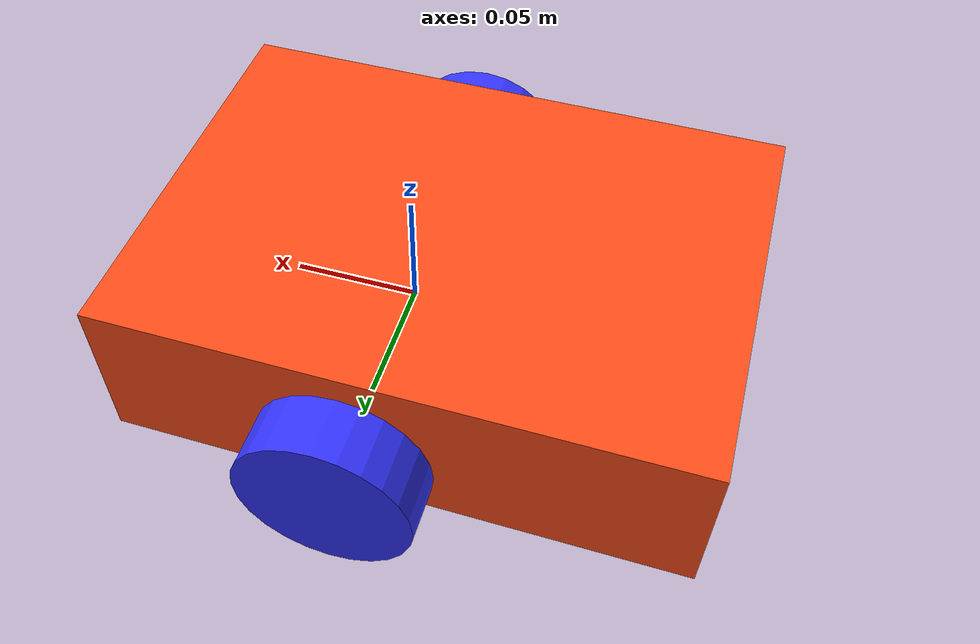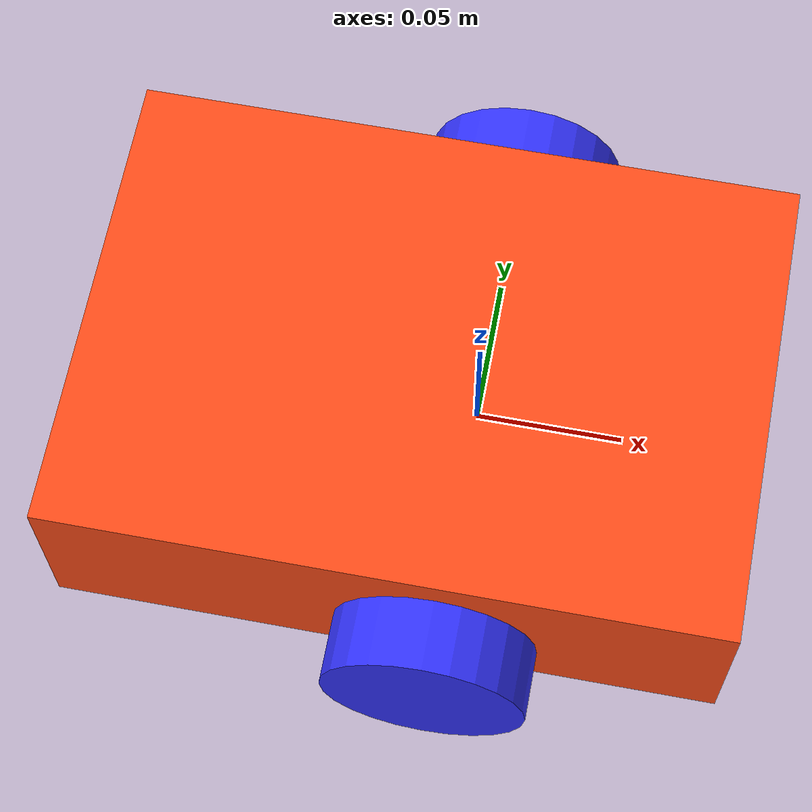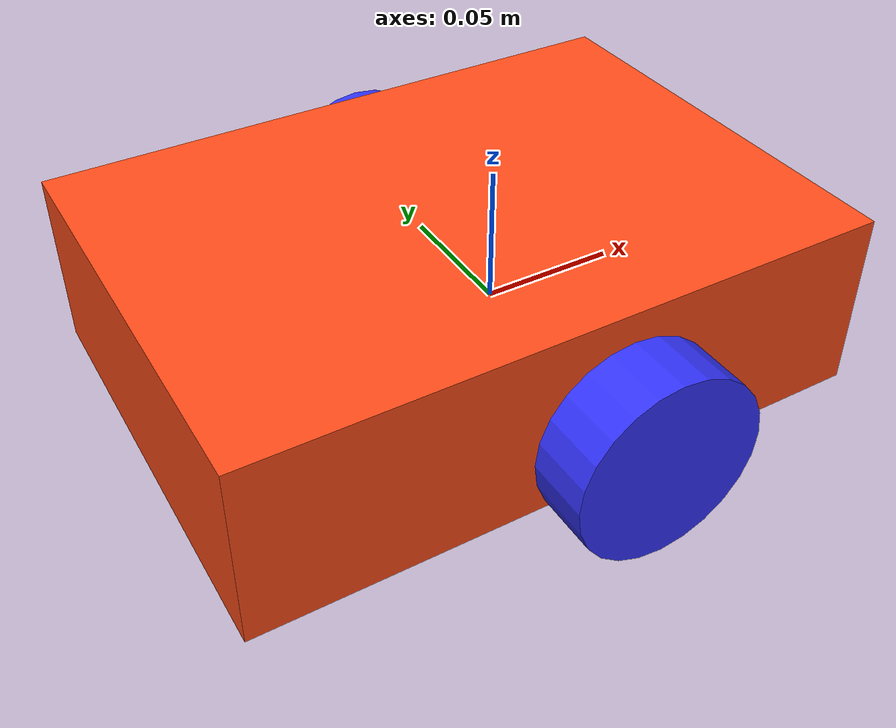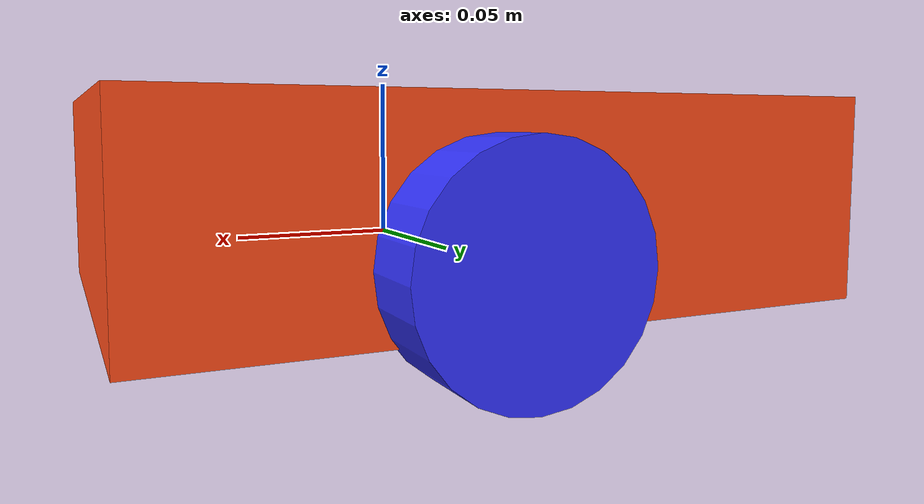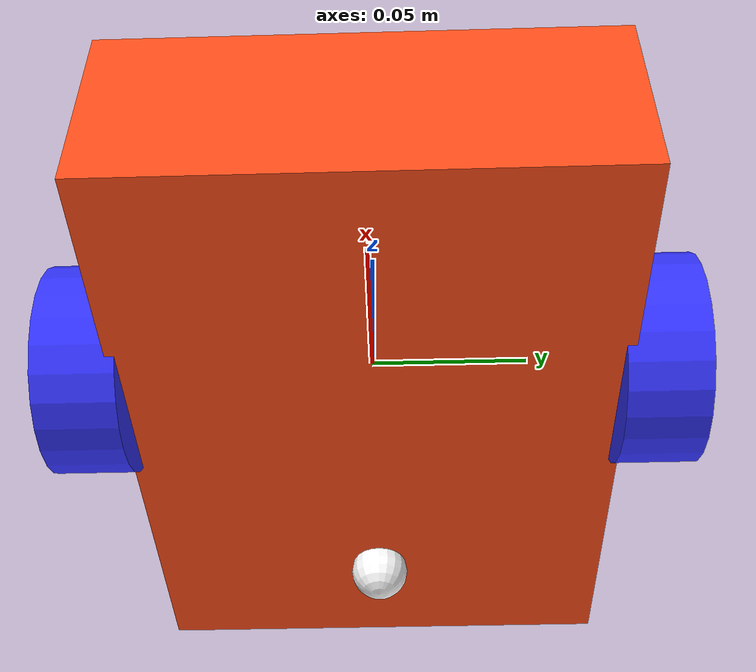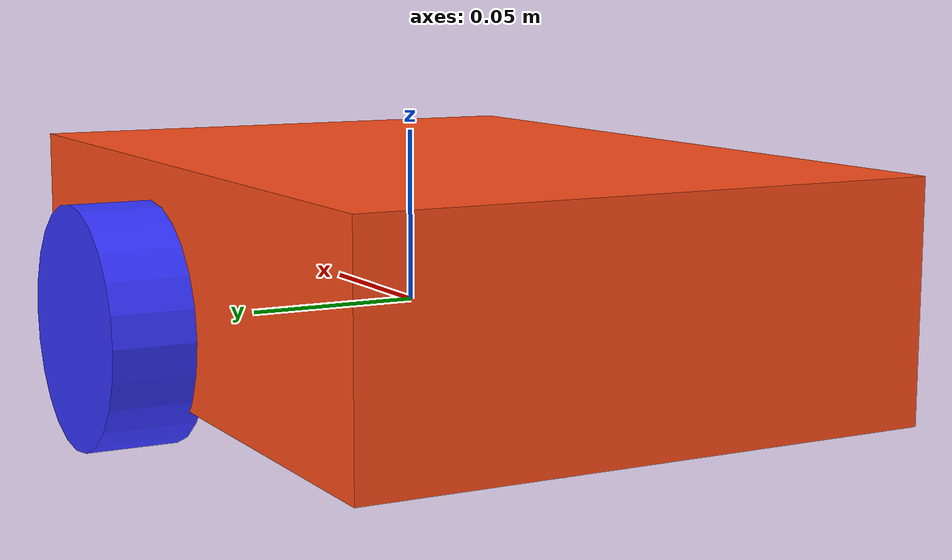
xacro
<?xml version="1.0"?>
<robot xmlns:xacro="http://www.ros.org/wiki/xacro" >

    <xacro:include filename="inertial_macros.xacro"/>

    <!-- Define camera tilt angle -->
    <xacro:property name="camera_link_tilt" value="0.0"/>

    <xacro:property name="chassis_length" value="0.225"/>
    <xacro:property name="chassis_width" value="0.160"/>
    <xacro:property name="chassis_height" value="0.065"/>
    <xacro:property name="chassis_mass" value="1.0"/>
    <xacro:property name="wheel_radius" value="0.034"/>
    <xacro:property name="wheel_thickness" value="0.026"/>
    <xacro:property name="wheel_mass" value="0.05"/>
    <xacro:property name="wheel_offset_x" value="0.130"/>
    <xacro:property name="wheel_offset_y" value="0.090"/>
    <xacro:property name="wheel_offset_z" value="0.02"/>
    <xacro:property name="caster_wheel_radius" value="0.01"/>
    <xacro:property name="caster_wheel_mass" value="0.01"/>
    <xacro:property name="caster_wheel_offset_x" value="0.045"/>
    <xacro:property name="caster_wheel_offset_z" value="${wheel_offset_z - wheel_radius + caster_wheel_radius}"/>

    <!-- Define camera tilt limits -->
    <xacro:property name="max_camera_tilt" value="1.57"/> <!-- Maximum tilt angle in radians -->
    <xacro:property name="min_camera_tilt" value="-1.57"/> <!-- Minimum tilt angle in radians -->

    <material name="white">
        <color rgba="1 1 1 1" />
    </material>

    <material name="orange">
        <color rgba="1 0.3 0.1 1"/>
    </material>

    <material name="blue">
        <color rgba="0.2 0.2 1 1"/>
    </material>

    <material name="black">
        <color rgba="0 0 0 1"/>
    </material>

    <material name="red">
        <color rgba="1 0 0 1"/>
    </material>

    <!-- BASE LINK -->

    <link name="base_link">

    </link>

    <!-- BASE_FOOTPRINT LINK -->

    <joint name="base_footprint_joint" type="fixed">
        <parent link="base_link"/>
        <child link="base_footprint"/>
        <origin xyz="0 0 0" rpy="0 0 0"/>
    </joint>

    <link name="base_footprint">
    </link>

    <!-- CHASSIS LINK -->

    <joint name="chassis_joint" type="fixed">
        <parent link="base_link"/>
        <child link="chassis"/>
        <origin xyz="${-wheel_offset_x} 0 ${-wheel_offset_z}"/>
    </joint>

    <link name="chassis">
        <visual>
            <origin xyz="${chassis_length/2} 0 ${chassis_height/2}"/>
            <geometry>
                <box size="${chassis_length} ${chassis_width} ${chassis_height}"/>
            </geometry>
            <material name="orange"/>
        </visual>
        <collision>
            <origin xyz="${chassis_length/2} 0 ${chassis_height/2}"/>
            <geometry>
                <box size="${chassis_length} ${chassis_width} ${chassis_height}"/>
            </geometry>
        </collision>
        <xacro:inertial_box mass="0.5" x="${chassis_length}" y="${chassis_width}" z="${chassis_height}">
            <origin xyz="${chassis_length/2} 0 ${chassis_height/2}" rpy="0 0 0"/>
        </xacro:inertial_box>
    </link>

    <!-- LEFT WHEEL LINK -->

    <joint name="left_wheel_joint" type="continuous">
        <parent link="base_link"/>
        <child link="left_wheel"/>
        <origin xyz="0 ${wheel_offset_y} 0" rpy="-${pi/2} 0 0" />
        <axis xyz="0 0 1"/>
    </joint>

    <link name="left_wheel">
        <visual>
            <geometry>
                <cylinder radius="${wheel_radius}" length="${wheel_thickness}"/>
            </geometry>
            <material name="blue"/>
        </visual>
        <collision>
            <geometry>
                <sphere radius="${wheel_radius}"/>
            </geometry>
        </collision>
        <xacro:inertial_cylinder mass="${wheel_mass}" length="${wheel_thickness}" radius="${wheel_radius}">
            <origin xyz="0 0 0" rpy="0 0 0"/>
        </xacro:inertial_cylinder>
    </link>

    <gazebo reference="left_wheel">
        <material>Gazebo/Blue</material>
    </gazebo>

    <!-- RIGHT WHEEL LINK -->

    <joint name="right_wheel_joint" type="continuous">
        <parent link="base_link"/>
        <child link="right_wheel"/>
        <origin xyz="0 ${-wheel_offset_y} 0" rpy="${pi/2} 0 0" />
        <axis xyz="0 0 -1"/>
    </joint>

    <link name="right_wheel">
        <visual>
            <geometry>
                <cylinder radius="${wheel_radius}" length="${wheel_thickness}"/>
            </geometry>
            <material name="blue"/>
        </visual>
        <collision>
            <geometry>
                <sphere radius="${wheel_radius}"/>
            </geometry>
        </collision>
        <xacro:inertial_cylinder mass="${wheel_mass}" length="${wheel_thickness}" radius="${wheel_radius}">
            <origin xyz="0 0 0" rpy="0 0 0"/>
        </xacro:inertial_cylinder>
    </link>

    <gazebo reference="right_wheel">
        <material>Gazebo/Blue</material>
    </gazebo>

    <!-- CASTER WHEEL LINK -->

    <joint name="caster_wheel_joint" type="fixed">
        <parent link="chassis"/>
        <child link="caster_wheel"/>
        <origin xyz="${caster_wheel_offset_x} 0 ${caster_wheel_offset_z}"/>
    </joint>

    <link name="caster_wheel">
        <visual>
            <geometry>
                <sphere radius="${caster_wheel_radius}"/>
            </geometry>
            <material name="white"/>
        </visual>
        <collision>
            <geometry>
                <sphere radius="${caster_wheel_radius}"/>
            </geometry>
        </collision>
        <xacro:inertial_sphere mass="${caster_wheel_mass}" radius="${caster_wheel_radius}">
            <origin xyz="0 0 0" rpy="0 0 0"/>
        </xacro:inertial_sphere>
    </link>

    <gazebo reference="caster_wheel">
        <material>Gazebo/White</material>
        <mu1 value="0.001"/>
        <mu2 value="0.001"/>
    </gazebo>

    <gazebo>
        <plugin filename="libgazebo_ros2_control.so" name="gazebo_ros2_control">
            <ros>
                <namespace>/</namespace>
                <parameter_file_ws>/path_to_workspace</parameter_file_ws>
            </ros>
            <robotSimType>gazebo_ros2_control/DefaultRobotHWSim</robotSimType>
            <robotParam>robot_description</robotParam>
        </plugin>
    </gazebo>

</robot>
